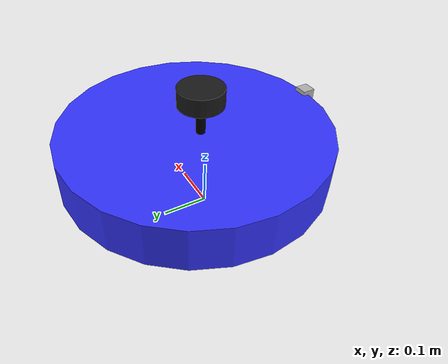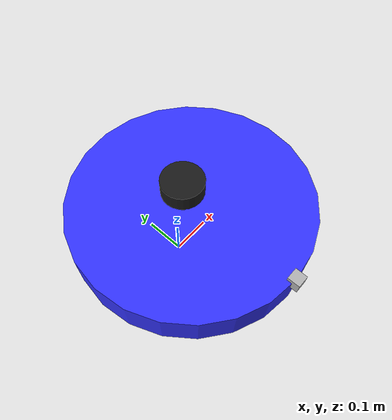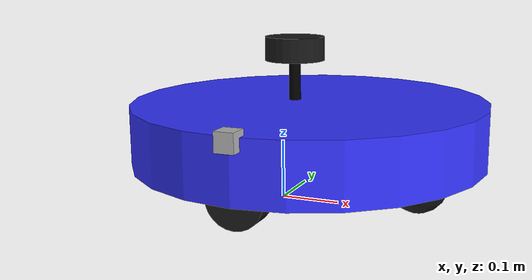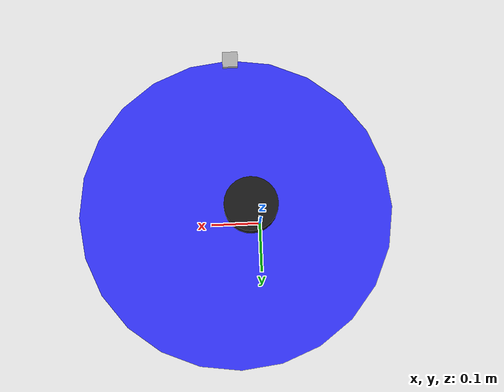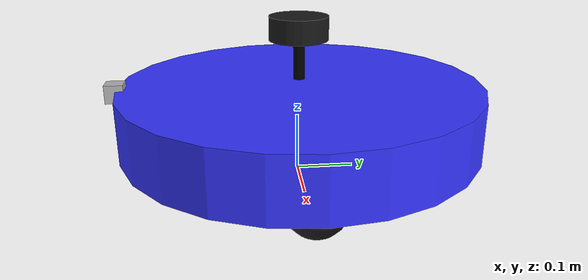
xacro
<?xml version="1.0"?>
<robot xmlns:xacro="http://www.ros.org/wiki/xacro" name="robot">

  <xacro:arg name="run_gz_sim" default="false"/>

  <!-- The robot .xacro file  -->
  <xacro:include filename="robot.xacro"/>
  <!-- The lidar sensor file  -->
  <xacro:include filename="lidar_sensor.xacro"/>
  <!-- The imu sensor file  -->
  <xacro:include filename="imu_sensor.xacro"/>
  <!-- dept camra file  -->
  <xacro:include filename="dept_camera.xacro"/>
  <!-- control file  -->
  <xacro:if value="$(arg run_gz_sim)">
        <xacro:include filename="$(find zed_bot_description)/urdf/controllers/gazebo_diff_drive_control.xacro" />
    </xacro:if>
    <xacro:unless value="$(arg run_gz_sim)">
        <xacro:include filename="$(find zed_bot_description)/urdf/controllers/epmc_diff_drive_ros2_control.xacro" />
    </xacro:unless>

</robot>

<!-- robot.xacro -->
<robot xmlns:xacro="http://www.ros.org/wiki/xacro">

    <xacro:include filename="inertial.xacro"/>

    <material name="orange">
        <color rgba="1 0.55 0 1"/>
    </material>

    <xacro:macro name="gz_material_orange">
        <material>
          <ambient>1.0 0.5 0.0 1.0</ambient>
          <diffuse>1.0 0.5 0.0 1.0</diffuse>
          <specular>0.1 0.1 0.1 1.0</specular>
          <emissive>0.0 0.0 0.0 1.0</emissive>
        </material>
    </xacro:macro>

    <material name="black">
        <color rgba="0.1 0.1 0.1 1"/>
    </material>

    <xacro:macro name="gz_material_black">
        <material>
          <ambient>0.1 0.1 0.1 1.0</ambient>
          <diffuse>0.1 0.1 0.1 1.0</diffuse>
          <specular>0.1 0.1 0.1 1.0</specular>
          <emissive>0.0 0.0 0.0 1.0</emissive>
        </material>
    </xacro:macro>

    <material name="silver">
        <color rgba="0.6 0.6 0.6 1"/>
    </material>

    <xacro:macro name="gz_material_silver">
        <material>
          <ambient>0.6 0.6 0.6 1.0</ambient>
          <diffuse>0.6 0.6 0.6 1.0</diffuse>
          <specular>0.1 0.1 0.1 1.0</specular>
          <emissive>0.0 0.0 0.0 1.0</emissive>
        </material>
    </xacro:macro>

    <material name="grey">
        <color rgba="0.25 0.25 0.25 1"/>
    </material>

    <xacro:macro name="gz_material_grey">
        <material>
          <ambient>0.25 0.25 0.25 1.0</ambient>
          <diffuse>0.25 0.25 0.25 1.0</diffuse>
          <specular>0.1 0.1 0.1 1.0</specular>
          <emissive>0.0 0.0 0.0 1.0</emissive>
        </material>
    </xacro:macro>

    <material name="blue">
        <color rgba="0.2 0.2 1 1"/>
    </material>

    <xacro:macro name="gz_material_blue">
        <material>
          <ambient>0.0 0.0 1.0 1.0</ambient>
          <diffuse>0.0 0.0 1.0 1.0</diffuse>
          <specular>0.1 0.1 0.1 1.0</specular>
          <emissive>0.0 0.0 0.0 1.0</emissive>
        </material>
    </xacro:macro>

    <material name="red">
        <color rgba="1 0.1 0.1 1"/>
    </material>

    <xacro:macro name="gz_material_red">
        <material>
          <ambient>1.0 0.0 0.0 1.0</ambient>
          <diffuse>1.0 0.0 0.0 1.0</diffuse>
          <specular>0.1 0.1 0.1 1.0</specular>
          <emissive>0.0 0.0 0.0 1.0</emissive>
        </material>
    </xacro:macro>

    <!-- BASE LINK -->
    <link name="base_link">
    </link>

    <!-- CHASSIS LINK -->
    <joint name="chassis_joint" type="fixed">
        <parent link="base_link"/>
        <child link="chassis"/>
        <origin xyz="-0.1 0 0.05"/>
    </joint>

    <link name="chassis">
        <visual>
            <origin xyz="0.15 0 0.075"/>
            <geometry>
                <cylinder radius="0.3" length="0.1"/> <!-- Circular chassis -->
            </geometry>
            <material name="blue"/>
        </visual>
        <collision>
            <origin xyz="0.15 0 0.075"/>
            <geometry>
                <cylinder radius="0.3" length="0.15"/>
            </geometry>
        </collision>
        <xacro:inertial_cylinder mass="0.5" radius="0.3" length="0.15">
            <origin xyz="0.3 0 0.075" rpy="0 0 0"/>
        </xacro:inertial_cylinder>
    </link>

    <xacro:if value="$(arg run_gz_sim)">
        <gazebo reference="chassis">
            <visual>
              <xacro:gz_material_blue/>
            </visual>
        </gazebo>
    </xacro:if>

    <!-- LEFT WHEEL OF ROBOT -->
    <joint name="left_wheel_joint" type="continuous">
        <parent link="base_link"/>
        <child link="left_wheel"/>
        <origin xyz="0 0.175 0.05" rpy="-${pi/2} 0 0"/>
        <axis xyz="0 0 1"/>
    </joint>

    <link name="left_wheel">
        <visual>
            <geometry>
                <cylinder radius="0.05" length="0.04"/>
            </geometry>
            <material name="black"/>
        </visual>
        <collision>
            <geometry>
                <cylinder radius="0.05" length="0.04"/>
            </geometry>
        </collision>
        <xacro:inertial_cylinder mass="0.1" length="0.04" radius="0.05">
            <origin xyz="0 0 0" rpy="0 0 0"/>
        </xacro:inertial_cylinder>
    </link>

    <xacro:if value="$(arg run_gz_sim)">
        <gazebo reference="left_wheel">
            <visual>
              <xacro:gz_material_black/>
            </visual>
            <mu1>1.0</mu1>
            <mu2>1.0</mu2>
        </gazebo>
    </xacro:if>

    <!-- RIGHT WHEEL OF ROBOT -->
    <joint name="right_wheel_joint" type="continuous">
        <parent link="base_link"/>
        <child link="right_wheel"/>
        <origin xyz="0 -0.175 0.05" rpy="${pi/2} 0 0"/>
        <axis xyz="0 0 -1"/>
    </joint>

    <link name="right_wheel">
        <visual>
            <geometry>
                <cylinder radius="0.05" length="0.04"/>
            </geometry>
            <material name="black"/>
        </visual>
        <collision>
            <geometry>
                <cylinder radius="0.05" length="0.04"/>
            </geometry>
        </collision>
        <xacro:inertial_cylinder mass="0.1" length="0.04" radius="0.05">
            <origin xyz="0 0 0" rpy="0 0 0"/>
        </xacro:inertial_cylinder>
    </link>

    <xacro:if value="$(arg run_gz_sim)">
        <gazebo reference="right_wheel">
            <visual>
              <xacro:gz_material_black/>
            </visual>
            <mu1>1.0</mu1>
            <mu2>1.0</mu2>
        </gazebo>
    </xacro:if>

    <!-- DOLLY WHEEL JOINT -->
    <joint name="dolly_wheel_joint" type="fixed">
        <parent link="chassis"/>
        <child link="dolly_wheel"/>
        <origin xyz="0.34 0 0"/>
    </joint>

    <link name="dolly_wheel">
        <visual>
            <geometry>
                <sphere radius="0.05"/>
            </geometry>
            <material name="black"/>
        </visual>
        <collision>
            <geometry>
                <sphere radius="0.05"/>
            </geometry>
        </collision>
        <xacro:inertial_sphere mass="0.1" radius="0.05">
            <origin xyz="0 0 0" rpy="0 0 0"/>
        </xacro:inertial_sphere>
    </link>

    <xacro:if value="$(arg run_gz_sim)">
        <gazebo reference="dolly_wheel">
            <visual>
              <xacro:gz_material_silver/>
            </visual>
            <mu1>0.001</mu1>
            <mu2>0.001</mu2>
        </gazebo>
    </xacro:if>

</robot>

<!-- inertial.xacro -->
<robot xmlns:xacro="http://www.ros.org/wiki/xacro" >

    <!-- Specify some standard inertial calculations https://en.wikipedia.org/wiki/List_of_moments_of_inertia -->
    <!-- These make use of xacro's mathematical functionality -->

    <xacro:macro name="inertial_sphere" params="mass radius *origin">
        <inertial>
            <xacro:insert_block name="origin"/>
            <mass value="${mass}" />
            <inertia ixx="${(2/5) * mass * (radius*radius)}" ixy="0.0" ixz="0.0"
                    iyy="${(2/5) * mass * (radius*radius)}" iyz="0.0"
                    izz="${(2/5) * mass * (radius*radius)}" />
        </inertial>
    </xacro:macro>

    <xacro:macro name="inertial_box" params="mass x y z *origin">
        <inertial>
            <xacro:insert_block name="origin"/>
            <mass value="${mass}" />
            <inertia ixx="${(1/12) * mass * (y*y+z*z)}" ixy="0.0" ixz="0.0"
                    iyy="${(1/12) * mass * (x*x+z*z)}" iyz="0.0"
                    izz="${(1/12) * mass * (x*x+y*y)}" />
        </inertial>
    </xacro:macro>

    <xacro:macro name="inertial_cylinder" params="mass length radius *origin">
        <inertial>
            <xacro:insert_block name="origin"/>
            <mass value="${mass}" />
            <inertia ixx="${(1/12) * mass * (3*radius*radius + length*length)}" ixy="0.0" ixz="0.0"
                    iyy="${(1/12) * mass * (3*radius*radius + length*length)}" iyz="0.0"
                    izz="${(1/2) * mass * (radius*radius)}" />
        </inertial>
    </xacro:macro>

</robot>

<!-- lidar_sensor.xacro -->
<robot xmlns:xacro="http://www.ros.org/wiki/xacro">

    <!-- LIDAR SENSOR JOINT -->
    <joint name="laser_joint" type="fixed">
        <parent link="chassis"/>
        <child link="laser_frame"/>
        <origin xyz="0.122 0 0.212" rpy="0 0 0"/>
    </joint>

    <!-- LIDAR SENSOR LINK -->
    <link name="laser_frame">
        <visual>
            <geometry>
                <cylinder radius="0.05" length="0.04"/>
            </geometry>
            <material name="black"/>
        </visual>
        <visual>
            <origin xyz="0 0 -0.05"/>
            <geometry>
                <cylinder radius="0.01" length="0.1"/>
            </geometry>
            <material name="black">
                <color rgba="0 0 0 1"/>
            </material>
        </visual>
        <collision>
            <geometry>
                <cylinder radius="0.05" length="0.04"/>
            </geometry>
        </collision>
        <!-- Inertial properties -->
        <xacro:inertial_cylinder mass="0.1" length="0.04" radius="0.05">
            <origin xyz="0 0 0" rpy="0 0 0"/>
        </xacro:inertial_cylinder>
    </link>

    <xacro:if value="$(arg run_gz_sim)">
      <gazebo reference="laser_frame">
        <visual>
          <xacro:gz_material_black/>
        </visual>
        <sensor name="laser_frame" type="gpu_lidar">
          <gz_frame_id>laser_frame</gz_frame_id>
          <ray>
            <scan>
              <horizontal>
                <samples>360</samples>
                <min_angle>${-pi*2}</min_angle>
                <max_angle>${pi*2}</max_angle>
                <resolution>1</resolution>
              </horizontal>
            </scan>
            <range>
              <min>0.20</min>
              <max>12.0</max>
              <resolution>0.01</resolution>
            </range>
            <noise>
              <type>gaussian</type>
              <mean>0.0</mean>
              <stddev>0.01</stddev>
            </noise>
          </ray>
          <always_on>true</always_on>
          <visualize>true</visualize>
          <update_rate>10.0</update_rate>
        </sensor>
      </gazebo>
    </xacro:if>

</robot>

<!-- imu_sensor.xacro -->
<robot xmlns:xacro="http://www.ros.org/wiki/xacro">

    <!-- IMU SENSOR JOINT -->
    <joint name="imu_joint" type="fixed">
        <parent link="base_link"/>
        <child link="imu_frame"/>
        <origin xyz="0 0 0.2" rpy="0 0 0"/>
    </joint>

    <!-- IMU SENSOR LINK -->
    <link name="imu_frame">
    </link>

</robot>

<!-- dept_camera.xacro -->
<robot xmlns:xacro="http://www.ros.org/wiki/xacro">

   <!-- Camera Joint -->
   <joint name="camera_joint" type="fixed">
      <parent link="chassis"/>
      <child link="camera_link"/>
      <!-- Camera origin adjusted to be at the center of the chassis -->
      <origin xyz="0.15 -0.3 0.12" rpy="0 0 0"/> <!-- Position camera at chassis center -->
   </joint>

    <!-- Camera link definition -->
    <link name="camera_link">
        <visual>
            <geometry>
                <!-- Changing to box for rectangular camera -->
                <box size="0.03 0.03 0.03"/> <!-- Adjust dimensions as needed -->
            </geometry>
            <!-- Removed material definition here, using Gazebo plugin material instead -->
        </visual>
    </link>

    <!-- Camera optical joint -->
    <joint name="camera_optical_joint" type="fixed">
        <parent link="camera_link"/>
        <child link="camera_link_optical"/>
        <origin xyz="0 0 0" rpy="${-pi/2} 0 ${-pi/2}"/>
    </joint>

    <link name="camera_link_optical"></link>

    <xacro:if value="$(arg run_gz_sim)">
        <gazebo reference="camera_link">
          <visual>
            <xacro:gz_material_grey/>
          </visual>
          <sensor name="camera_link_optical" type="depth">
            <gz_frame_id>camera_link</gz_frame_id>
            <camera>
              <horizontal_fov>1.047</horizontal_fov>
              <image>
                <width>640</width>
                <height>360</height>
              </image>
              <clip>
                <near>0.1</near>
                <far>100</far>
              </clip>
            </camera>
            <always_on>1</always_on>
            <update_rate>30</update_rate>
            <visualize>true</visualize>
            <enable_metrics>true</enable_metrics>
          </sensor>
        </gazebo>
    </xacro:if>

</robot>
